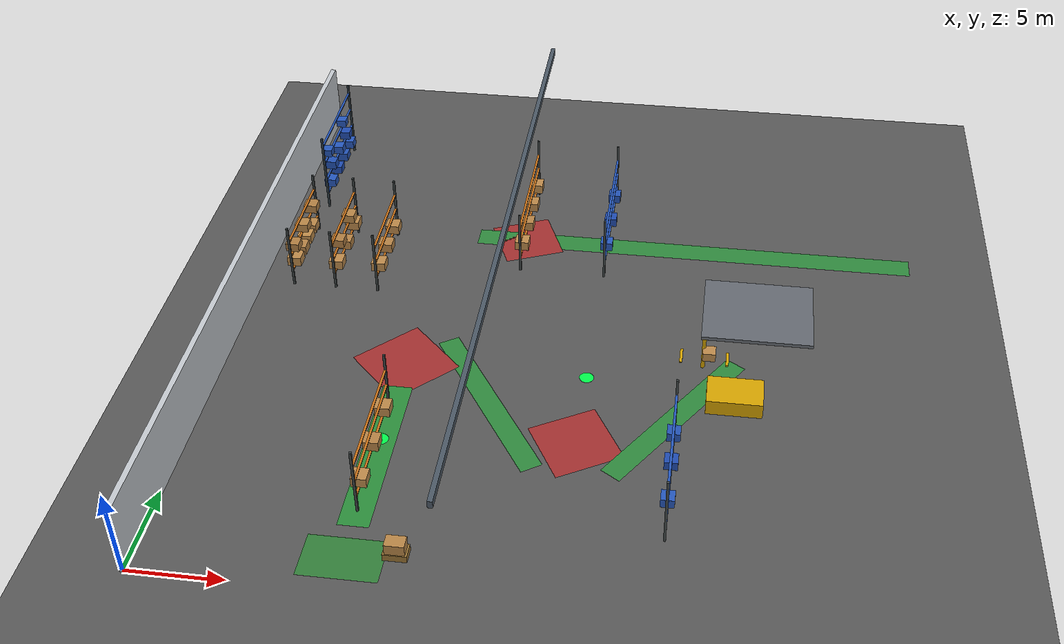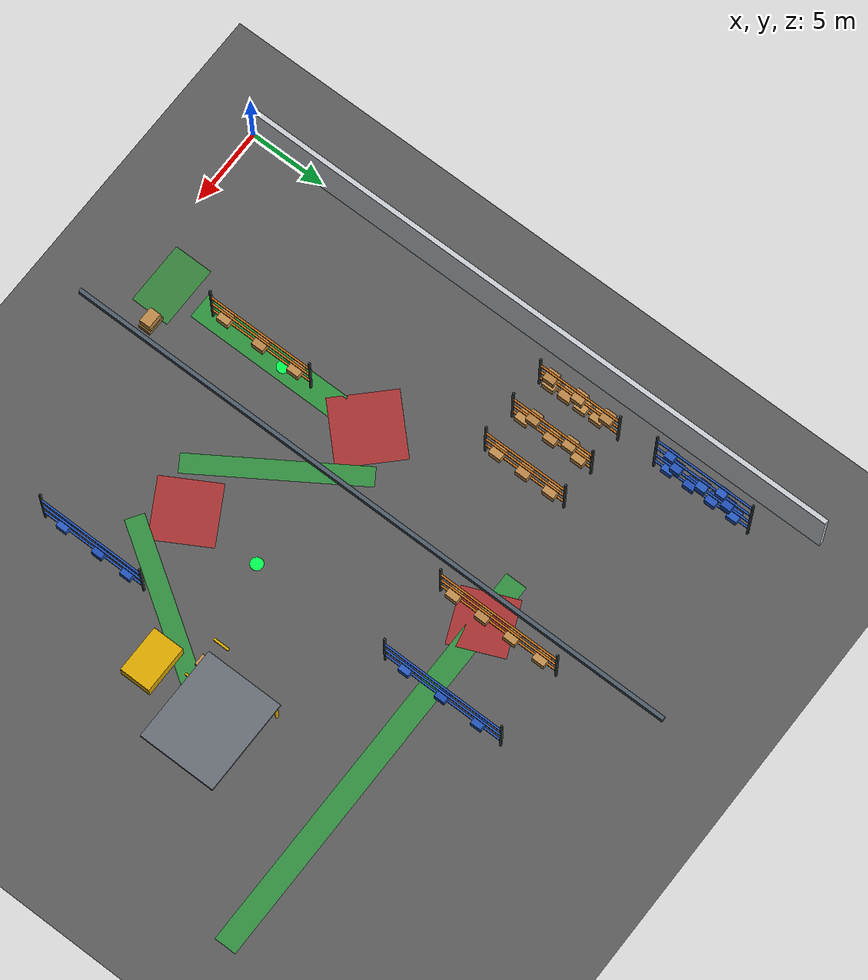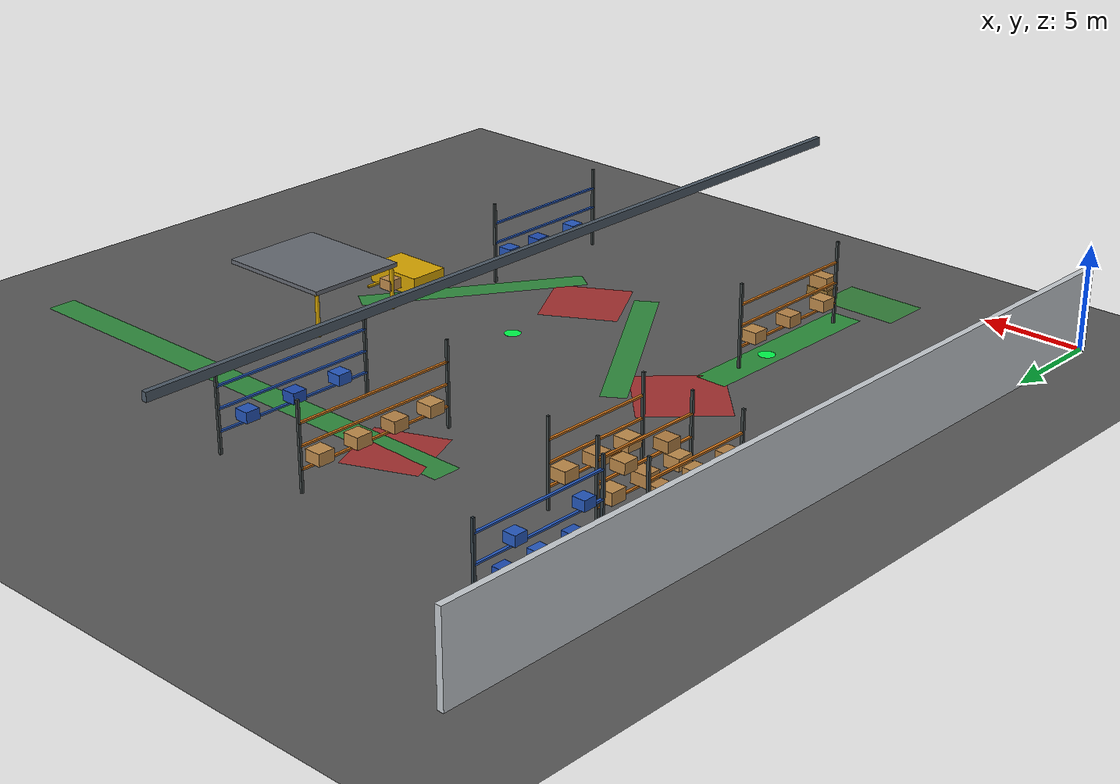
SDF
<sdf version="1.9">
 <world name="warehouse">
  <model name="ground_plane">
   <static>true</static>
   <link name="link">
    <collision name="collision">
     <geometry><plane><normal>0 0 1</normal><size>200 200</size></plane></geometry>
    </collision>
    <visual name="visual">
     <geometry><plane><normal>0 0 1</normal><size>200 200</size></plane></geometry>
     <material><ambient>0.35 0.35 0.35 1</ambient><diffuse>0.35 0.35 0.35 1</diffuse></material>
    </visual>
   </link>
  </model>
  <model name="wall_west">
   <static>true</static>
   <pose>0 20 2.0 0 0 0</pose>
   <link name="link">
    <collision name="c"><geometry><box><size>0.3 40.2 4.0</size></box></geometry></collision>
    <visual name="v">
     <geometry><box><size>0.3 40.2 4.0</size></box></geometry>
     <material><ambient>0.78 0.80 0.82 1</ambient><diffuse>0.78 0.80 0.82 1</diffuse></material>
    </visual>
   </link>
  </model>
  <model name="rack_A1_upright_l">
   <static>true</static>
   <pose>2.0 22.0 2.0 0 0 0</pose>
   <link name="link">
    <collision name="c"><geometry><box><size>0.12 0.12 4.0</size></box></geometry></collision>
    <visual name="v">
     <geometry><box><size>0.12 0.12 4.0</size></box></geometry>
     <material><ambient>0.25 0.28 0.28 1</ambient><diffuse>0.25 0.28 0.28 1</diffuse></material>
    </visual>
   </link>
  </model>
  <model name="rack_A1_upright_r">
   <static>true</static>
   <pose>2.0 27.5 2.0 0 0 0</pose>
   <link name="link">
    <collision name="c"><geometry><box><size>0.12 0.12 4.0</size></box></geometry></collision>
    <visual name="v">
     <geometry><box><size>0.12 0.12 4.0</size></box></geometry>
     <material><ambient>0.25 0.28 0.28 1</ambient><diffuse>0.25 0.28 0.28 1</diffuse></material>
    </visual>
   </link>
  </model>
  <model name="rack_A1_beam1">
   <static>true</static>
   <pose>2.0 24.75 1.0 0 0 0</pose>
   <link name="link">
    <collision name="c"><geometry><box><size>0.12 5.5 0.08</size></box></geometry></collision>
    <visual name="v">
     <geometry><box><size>0.12 5.5 0.08</size></box></geometry>
     <material><ambient>0.8 0.45 0.1 1</ambient><diffuse>0.8 0.45 0.1 1</diffuse></material>
    </visual>
   </link>
  </model>
  <model name="rack_A1_beam2">
   <static>true</static>
   <pose>2.0 24.75 2.0 0 0 0</pose>
   <link name="link">
    <collision name="c"><geometry><box><size>0.12 5.5 0.08</size></box></geometry></collision>
    <visual name="v">
     <geometry><box><size>0.12 5.5 0.08</size></box></geometry>
     <material><ambient>0.8 0.45 0.1 1</ambient><diffuse>0.8 0.45 0.1 1</diffuse></material>
    </visual>
   </link>
  </model>
  <model name="rack_A1_beam3">
   <static>true</static>
   <pose>2.0 24.75 3.0 0 0 0</pose>
   <link name="link">
    <collision name="c"><geometry><box><size>0.12 5.5 0.08</size></box></geometry></collision>
    <visual name="v">
     <geometry><box><size>0.12 5.5 0.08</size></box></geometry>
     <material><ambient>0.8 0.45 0.1 1</ambient><diffuse>0.8 0.45 0.1 1</diffuse></material>
    </visual>
   </link>
  </model>
  <model name="box_A1_t1_1">
   <static>true</static>
   <pose>2.0 22.8 1.3 0 0 0</pose>
   <link name="link">
    <collision name="c"><geometry><box><size>0.8 0.8 0.55</size></box></geometry></collision>
    <visual name="v">
     <geometry><box><size>0.8 0.8 0.55</size></box></geometry>
     <material><ambient>0.75 0.55 0.3 1</ambient><diffuse>0.75 0.55 0.3 1</diffuse></material>
    </visual>
   </link>
  </model>
  <model name="box_A1_t1_2">
   <static>true</static>
   <pose>2.0 23.9 1.3 0 0 0</pose>
   <link name="link">
    <collision name="c"><geometry><box><size>0.8 0.8 0.55</size></box></geometry></collision>
    <visual name="v">
     <geometry><box><size>0.8 0.8 0.55</size></box></geometry>
     <material><ambient>0.72 0.52 0.28 1</ambient><diffuse>0.72 0.52 0.28 1</diffuse></material>
    </visual>
   </link>
  </model>
  <model name="box_A1_t1_3">
   <static>true</static>
   <pose>2.0 25.0 1.3 0 0 0</pose>
   <link name="link">
    <collision name="c"><geometry><box><size>0.8 0.8 0.55</size></box></geometry></collision>
    <visual name="v">
     <geometry><box><size>0.8 0.8 0.55</size></box></geometry>
     <material><ambient>0.76 0.56 0.3 1</ambient><diffuse>0.76 0.56 0.3 1</diffuse></material>
    </visual>
   </link>
  </model>
  <model name="box_A1_t1_4">
   <static>true</static>
   <pose>2.0 26.1 1.3 0 0 0</pose>
   <link name="link">
    <collision name="c"><geometry><box><size>0.8 0.8 0.55</size></box></geometry></collision>
    <visual name="v">
     <geometry><box><size>0.8 0.8 0.55</size></box></geometry>
     <material><ambient>0.74 0.54 0.29 1</ambient><diffuse>0.74 0.54 0.29 1</diffuse></material>
    </visual>
   </link>
  </model>
  <model name="box_A1_t2_1">
   <static>true</static>
   <pose>2.0 22.8 2.3 0 0 0</pose>
   <link name="link">
    <collision name="c"><geometry><box><size>0.75 0.75 0.5</size></box></geometry></collision>
    <visual name="v">
     <geometry><box><size>0.75 0.75 0.5</size></box></geometry>
     <material><ambient>0.70 0.50 0.26 1</ambient><diffuse>0.70 0.50 0.26 1</diffuse></material>
    </visual>
   </link>
  </model>
  <model name="box_A1_t2_2">
   <static>true</static>
   <pose>2.0 24.75 2.3 0 0 0</pose>
   <link name="link">
    <collision name="c"><geometry><box><size>0.75 0.75 0.5</size></box></geometry></collision>
    <visual name="v">
     <geometry><box><size>0.75 0.75 0.5</size></box></geometry>
     <material><ambient>0.73 0.53 0.28 1</ambient><diffuse>0.73 0.53 0.28 1</diffuse></material>
    </visual>
   </link>
  </model>
  <model name="box_A1_t2_3">
   <static>true</static>
   <pose>2.0 26.7 2.3 0 0 0</pose>
   <link name="link">
    <collision name="c"><geometry><box><size>0.75 0.75 0.5</size></box></geometry></collision>
    <visual name="v">
     <geometry><box><size>0.75 0.75 0.5</size></box></geometry>
     <material><ambient>0.71 0.51 0.27 1</ambient><diffuse>0.71 0.51 0.27 1</diffuse></material>
    </visual>
   </link>
  </model>
  <model name="rack_A2_upright_l">
   <static>true</static>
   <pose>4.5 22.0 2.0 0 0 0</pose>
   <link name="link">
    <collision name="c"><geometry><box><size>0.12 0.12 4.0</size></box></geometry></collision>
    <visual name="v">
     <geometry><box><size>0.12 0.12 4.0</size></box></geometry>
     <material><ambient>0.25 0.28 0.28 1</ambient><diffuse>0.25 0.28 0.28 1</diffuse></material>
    </visual>
   </link>
  </model>
  <model name="rack_A2_upright_r">
   <static>true</static>
   <pose>4.5 27.5 2.0 0 0 0</pose>
   <link name="link">
    <collision name="c"><geometry><box><size>0.12 0.12 4.0</size></box></geometry></collision>
    <visual name="v">
     <geometry><box><size>0.12 0.12 4.0</size></box></geometry>
     <material><ambient>0.25 0.28 0.28 1</ambient><diffuse>0.25 0.28 0.28 1</diffuse></material>
    </visual>
   </link>
  </model>
  <model name="rack_A2_beam1">
   <static>true</static>
   <pose>4.5 24.75 1.0 0 0 0</pose>
   <link name="link">
    <collision name="c"><geometry><box><size>0.12 5.5 0.08</size></box></geometry></collision>
    <visual name="v">
     <geometry><box><size>0.12 5.5 0.08</size></box></geometry>
     <material><ambient>0.8 0.45 0.1 1</ambient><diffuse>0.8 0.45 0.1 1</diffuse></material>
    </visual>
   </link>
  </model>
  <model name="rack_A2_beam2">
   <static>true</static>
   <pose>4.5 24.75 2.0 0 0 0</pose>
   <link name="link">
    <collision name="c"><geometry><box><size>0.12 5.5 0.08</size></box></geometry></collision>
    <visual name="v">
     <geometry><box><size>0.12 5.5 0.08</size></box></geometry>
     <material><ambient>0.8 0.45 0.1 1</ambient><diffuse>0.8 0.45 0.1 1</diffuse></material>
    </visual>
   </link>
  </model>
  <model name="rack_A2_beam3">
   <static>true</static>
   <pose>4.5 24.75 3.0 0 0 0</pose>
   <link name="link">
    <collision name="c"><geometry><box><size>0.12 5.5 0.08</size></box></geometry></collision>
    <visual name="v">
     <geometry><box><size>0.12 5.5 0.08</size></box></geometry>
     <material><ambient>0.8 0.45 0.1 1</ambient><diffuse>0.8 0.45 0.1 1</diffuse></material>
    </visual>
   </link>
  </model>
  <model name="box_A2_t1_1">
   <static>true</static>
   <pose>4.5 22.8 1.3 0 0 0</pose>
   <link name="link">
    <collision name="c"><geometry><box><size>0.8 0.8 0.55</size></box></geometry></collision>
    <visual name="v">
     <geometry><box><size>0.8 0.8 0.55</size></box></geometry>
     <material><ambient>0.75 0.55 0.30 1</ambient><diffuse>0.75 0.55 0.30 1</diffuse></material>
    </visual>
   </link>
  </model>
  <model name="box_A2_t1_2">
   <static>true</static>
   <pose>4.5 24.75 1.3 0 0 0</pose>
   <link name="link">
    <collision name="c"><geometry><box><size>0.8 0.8 0.55</size></box></geometry></collision>
    <visual name="v">
     <geometry><box><size>0.8 0.8 0.55</size></box></geometry>
     <material><ambient>0.72 0.52 0.28 1</ambient><diffuse>0.72 0.52 0.28 1</diffuse></material>
    </visual>
   </link>
  </model>
  <model name="box_A2_t1_3">
   <static>true</static>
   <pose>4.5 26.7 1.3 0 0 0</pose>
   <link name="link">
    <collision name="c"><geometry><box><size>0.8 0.8 0.55</size></box></geometry></collision>
    <visual name="v">
     <geometry><box><size>0.8 0.8 0.55</size></box></geometry>
     <material><ambient>0.74 0.54 0.29 1</ambient><diffuse>0.74 0.54 0.29 1</diffuse></material>
    </visual>
   </link>
  </model>
  <model name="box_A2_t2_1">
   <static>true</static>
   <pose>4.5 23.5 2.3 0 0 0</pose>
   <link name="link">
    <collision name="c"><geometry><box><size>0.75 0.75 0.5</size></box></geometry></collision>
    <visual name="v">
     <geometry><box><size>0.75 0.75 0.5</size></box></geometry>
     <material><ambient>0.70 0.50 0.26 1</ambient><diffuse>0.70 0.50 0.26 1</diffuse></material>
    </visual>
   </link>
  </model>
  <model name="box_A2_t2_2">
   <static>true</static>
   <pose>4.5 26.0 2.3 0 0 0</pose>
   <link name="link">
    <collision name="c"><geometry><box><size>0.75 0.75 0.5</size></box></geometry></collision>
    <visual name="v">
     <geometry><box><size>0.75 0.75 0.5</size></box></geometry>
     <material><ambient>0.73 0.53 0.28 1</ambient><diffuse>0.73 0.53 0.28 1</diffuse></material>
    </visual>
   </link>
  </model>
  <model name="rack_A3_upright_l">
   <static>true</static>
   <pose>7.0 22.0 2.0 0 0 0</pose>
   <link name="link">
    <collision name="c"><geometry><box><size>0.12 0.12 4.0</size></box></geometry></collision>
    <visual name="v">
     <geometry><box><size>0.12 0.12 4.0</size></box></geometry>
     <material><ambient>0.25 0.28 0.28 1</ambient><diffuse>0.25 0.28 0.28 1</diffuse></material>
    </visual>
   </link>
  </model>
  <model name="rack_A3_upright_r">
   <static>true</static>
   <pose>7.0 27.5 2.0 0 0 0</pose>
   <link name="link">
    <collision name="c"><geometry><box><size>0.12 0.12 4.0</size></box></geometry></collision>
    <visual name="v">
     <geometry><box><size>0.12 0.12 4.0</size></box></geometry>
     <material><ambient>0.25 0.28 0.28 1</ambient><diffuse>0.25 0.28 0.28 1</diffuse></material>
    </visual>
   </link>
  </model>
  <model name="rack_A3_beam1">
   <static>true</static>
   <pose>7.0 24.75 1.0 0 0 0</pose>
   <link name="link">
    <collision name="c"><geometry><box><size>0.12 5.5 0.08</size></box></geometry></collision>
    <visual name="v">
     <geometry><box><size>0.12 5.5 0.08</size></box></geometry>
     <material><ambient>0.8 0.45 0.1 1</ambient><diffuse>0.8 0.45 0.1 1</diffuse></material>
    </visual>
   </link>
  </model>
  <model name="rack_A3_beam2">
   <static>true</static>
   <pose>7.0 24.75 2.0 0 0 0</pose>
   <link name="link">
    <collision name="c"><geometry><box><size>0.12 5.5 0.08</size></box></geometry></collision>
    <visual name="v">
     <geometry><box><size>0.12 5.5 0.08</size></box></geometry>
     <material><ambient>0.8 0.45 0.1 1</ambient><diffuse>0.8 0.45 0.1 1</diffuse></material>
    </visual>
   </link>
  </model>
  <model name="rack_A3_beam3">
   <static>true</static>
   <pose>7.0 24.75 3.0 0 0 0</pose>
   <link name="link">
    <collision name="c"><geometry><box><size>0.12 5.5 0.08</size></box></geometry></collision>
    <visual name="v">
     <geometry><box><size>0.12 5.5 0.08</size></box></geometry>
     <material><ambient>0.8 0.45 0.1 1</ambient><diffuse>0.8 0.45 0.1 1</diffuse></material>
    </visual>
   </link>
  </model>
  <model name="box_A3_t1_1">
   <static>true</static>
   <pose>7.0 22.9 1.3 0 0 0</pose>
   <link name="link">
    <collision name="c"><geometry><box><size>0.8 0.8 0.55</size></box></geometry></collision>
    <visual name="v">
     <geometry><box><size>0.8 0.8 0.55</size></box></geometry>
     <material><ambient>0.75 0.55 0.3 1</ambient><diffuse>0.75 0.55 0.3 1</diffuse></material>
    </visual>
   </link>
  </model>
  <model name="box_A3_t1_2">
   <static>true</static>
   <pose>7.0 24.75 1.3 0 0 0</pose>
   <link name="link">
    <collision name="c"><geometry><box><size>0.8 0.8 0.55</size></box></geometry></collision>
    <visual name="v">
     <geometry><box><size>0.8 0.8 0.55</size></box></geometry>
     <material><ambient>0.72 0.52 0.28 1</ambient><diffuse>0.72 0.52 0.28 1</diffuse></material>
    </visual>
   </link>
  </model>
  <model name="box_A3_t1_3">
   <static>true</static>
   <pose>7.0 26.6 1.3 0 0 0</pose>
   <link name="link">
    <collision name="c"><geometry><box><size>0.8 0.8 0.55</size></box></geometry></collision>
    <visual name="v">
     <geometry><box><size>0.8 0.8 0.55</size></box></geometry>
     <material><ambient>0.74 0.54 0.29 1</ambient><diffuse>0.74 0.54 0.29 1</diffuse></material>
    </visual>
   </link>
  </model>
  <model name="rack_Ab1_upright_l">
   <static>true</static>
   <pose>2.0 30.0 2.5 0 0 0</pose>
   <link name="link">
    <collision name="c"><geometry><box><size>0.12 0.12 5.0</size></box></geometry></collision>
    <visual name="v">
     <geometry><box><size>0.12 0.12 5.0</size></box></geometry>
     <material><ambient>0.2 0.25 0.28 1</ambient><diffuse>0.2 0.25 0.28 1</diffuse></material>
    </visual>
   </link>
  </model>
  <model name="rack_Ab1_upright_r">
   <static>true</static>
   <pose>2.0 36.5 2.5 0 0 0</pose>
   <link name="link">
    <collision name="c"><geometry><box><size>0.12 0.12 5.0</size></box></geometry></collision>
    <visual name="v">
     <geometry><box><size>0.12 0.12 5.0</size></box></geometry>
     <material><ambient>0.2 0.25 0.28 1</ambient><diffuse>0.2 0.25 0.28 1</diffuse></material>
    </visual>
   </link>
  </model>
  <model name="rack_Ab1_beam1">
   <static>true</static>
   <pose>2.0 33.25 1.0 0 0 0</pose>
   <link name="link">
    <collision name="c"><geometry><box><size>0.12 6.5 0.08</size></box></geometry></collision>
    <visual name="v">
     <geometry><box><size>0.12 6.5 0.08</size></box></geometry>
     <material><ambient>0.15 0.35 0.75 1</ambient><diffuse>0.15 0.35 0.75 1</diffuse></material>
    </visual>
   </link>
  </model>
  <model name="rack_Ab1_beam2">
   <static>true</static>
   <pose>2.0 33.25 2.0 0 0 0</pose>
   <link name="link">
    <collision name="c"><geometry><box><size>0.12 6.5 0.08</size></box></geometry></collision>
    <visual name="v">
     <geometry><box><size>0.12 6.5 0.08</size></box></geometry>
     <material><ambient>0.15 0.35 0.75 1</ambient><diffuse>0.15 0.35 0.75 1</diffuse></material>
    </visual>
   </link>
  </model>
  <model name="rack_Ab1_beam3">
   <static>true</static>
   <pose>2.0 33.25 3.2 0 0 0</pose>
   <link name="link">
    <collision name="c"><geometry><box><size>0.12 6.5 0.08</size></box></geometry></collision>
    <visual name="v">
     <geometry><box><size>0.12 6.5 0.08</size></box></geometry>
     <material><ambient>0.15 0.35 0.75 1</ambient><diffuse>0.15 0.35 0.75 1</diffuse></material>
    </visual>
   </link>
  </model>
  <model name="rack_Ab1_beam4">
   <static>true</static>
   <pose>2.0 33.25 4.4 0 0 0</pose>
   <link name="link">
    <collision name="c"><geometry><box><size>0.12 6.5 0.08</size></box></geometry></collision>
    <visual name="v">
     <geometry><box><size>0.12 6.5 0.08</size></box></geometry>
     <material><ambient>0.15 0.35 0.75 1</ambient><diffuse>0.15 0.35 0.75 1</diffuse></material>
    </visual>
   </link>
  </model>
  <model name="box_Ab1_t1_1">
   <static>true</static>
   <pose>2.0 31.0 1.3 0 0 0</pose>
   <link name="link">
    <collision name="c"><geometry><box><size>0.7 0.7 0.5</size></box></geometry></collision>
    <visual name="v">
     <geometry><box><size>0.7 0.7 0.5</size></box></geometry>
     <material><ambient>0.15 0.35 0.75 1</ambient><diffuse>0.15 0.35 0.75 1</diffuse></material>
    </visual>
   </link>
  </model>
  <model name="box_Ab1_t1_2">
   <static>true</static>
   <pose>2.0 32.5 1.3 0 0 0</pose>
   <link name="link">
    <collision name="c"><geometry><box><size>0.7 0.7 0.5</size></box></geometry></collision>
    <visual name="v">
     <geometry><box><size>0.7 0.7 0.5</size></box></geometry>
     <material><ambient>0.12 0.30 0.70 1</ambient><diffuse>0.12 0.30 0.70 1</diffuse></material>
    </visual>
   </link>
  </model>
  <model name="box_Ab1_t1_3">
   <static>true</static>
   <pose>2.0 34.0 1.3 0 0 0</pose>
   <link name="link">
    <collision name="c"><geometry><box><size>0.7 0.7 0.5</size></box></geometry></collision>
    <visual name="v">
     <geometry><box><size>0.7 0.7 0.5</size></box></geometry>
     <material><ambient>0.14 0.33 0.72 1</ambient><diffuse>0.14 0.33 0.72 1</diffuse></material>
    </visual>
   </link>
  </model>
  <model name="box_Ab1_t1_4">
   <static>true</static>
   <pose>2.0 35.5 1.3 0 0 0</pose>
   <link name="link">
    <collision name="c"><geometry><box><size>0.7 0.7 0.5</size></box></geometry></collision>
    <visual name="v">
     <geometry><box><size>0.7 0.7 0.5</size></box></geometry>
     <material><ambient>0.15 0.35 0.75 1</ambient><diffuse>0.15 0.35 0.75 1</diffuse></material>
    </visual>
   </link>
  </model>
  <model name="box_Ab1_t2_1">
   <static>true</static>
   <pose>2.0 31.5 2.3 0 0 0</pose>
   <link name="link">
    <collision name="c"><geometry><box><size>0.65 0.65 0.5</size></box></geometry></collision>
    <visual name="v">
     <geometry><box><size>0.65 0.65 0.5</size></box></geometry>
     <material><ambient>0.13 0.32 0.71 1</ambient><diffuse>0.13 0.32 0.71 1</diffuse></material>
    </visual>
   </link>
  </model>
  <model name="box_Ab1_t2_2">
   <static>true</static>
   <pose>2.0 33.25 2.3 0 0 0</pose>
   <link name="link">
    <collision name="c"><geometry><box><size>0.65 0.65 0.5</size></box></geometry></collision>
    <visual name="v">
     <geometry><box><size>0.65 0.65 0.5</size></box></geometry>
     <material><ambient>0.15 0.35 0.75 1</ambient><diffuse>0.15 0.35 0.75 1</diffuse></material>
    </visual>
   </link>
  </model>
  <model name="box_Ab1_t2_3">
   <static>true</static>
   <pose>2.0 35.0 2.3 0 0 0</pose>
   <link name="link">
    <collision name="c"><geometry><box><size>0.65 0.65 0.5</size></box></geometry></collision>
    <visual name="v">
     <geometry><box><size>0.65 0.65 0.5</size></box></geometry>
     <material><ambient>0.12 0.30 0.70 1</ambient><diffuse>0.12 0.30 0.70 1</diffuse></material>
    </visual>
   </link>
  </model>
  <model name="box_Ab1_t3_1">
   <static>true</static>
   <pose>2.0 31.0 3.5 0 0 0</pose>
   <link name="link">
    <collision name="c"><geometry><box><size>0.6 0.6 0.45</size></box></geometry></collision>
    <visual name="v">
     <geometry><box><size>0.6 0.6 0.45</size></box></geometry>
     <material><ambient>0.14 0.34 0.73 1</ambient><diffuse>0.14 0.34 0.73 1</diffuse></material>
    </visual>
   </link>
  </model>
  <model name="box_Ab1_t3_2">
   <static>true</static>
   <pose>2.0 34.5 3.5 0 0 0</pose>
   <link name="link">
    <collision name="c"><geometry><box><size>0.6 0.6 0.45</size></box></geometry></collision>
    <visual name="v">
     <geometry><box><size>0.6 0.6 0.45</size></box></geometry>
     <material><ambient>0.15 0.35 0.75 1</ambient><diffuse>0.15 0.35 0.75 1</diffuse></material>
    </visual>
   </link>
  </model>
  <model name="rack_C1_upright_l">
   <static>true</static>
   <pose>15.0 25.0 2.0 0 0 0</pose>
   <link name="link">
    <collision name="c"><geometry><box><size>0.12 0.12 4.0</size></box></geometry></collision>
    <visual name="v">
     <geometry><box><size>0.12 0.12 4.0</size></box></geometry>
     <material><ambient>0.25 0.28 0.28 1</ambient><diffuse>0.25 0.28 0.28 1</diffuse></material>
    </visual>
   </link>
  </model>
  <model name="rack_C1_upright_r">
   <static>true</static>
   <pose>15.0 33.0 2.0 0 0 0</pose>
   <link name="link">
    <collision name="c"><geometry><box><size>0.12 0.12 4.0</size></box></geometry></collision>
    <visual name="v">
     <geometry><box><size>0.12 0.12 4.0</size></box></geometry>
     <material><ambient>0.25 0.28 0.28 1</ambient><diffuse>0.25 0.28 0.28 1</diffuse></material>
    </visual>
   </link>
  </model>
  <model name="rack_C1_beam1">
   <static>true</static>
   <pose>15.0 29.0 1.0 0 0 0</pose>
   <link name="link">
    <collision name="c"><geometry><box><size>0.12 8.0 0.08</size></box></geometry></collision>
    <visual name="v">
     <geometry><box><size>0.12 8.0 0.08</size></box></geometry>
     <material><ambient>0.8 0.45 0.1 1</ambient><diffuse>0.8 0.45 0.1 1</diffuse></material>
    </visual>
   </link>
  </model>
  <model name="rack_C1_beam2">
   <static>true</static>
   <pose>15.0 29.0 2.0 0 0 0</pose>
   <link name="link">
    <collision name="c"><geometry><box><size>0.12 8.0 0.08</size></box></geometry></collision>
    <visual name="v">
     <geometry><box><size>0.12 8.0 0.08</size></box></geometry>
     <material><ambient>0.8 0.45 0.1 1</ambient><diffuse>0.8 0.45 0.1 1</diffuse></material>
    </visual>
   </link>
  </model>
  <model name="rack_C1_beam3">
   <static>true</static>
   <pose>15.0 29.0 3.0 0 0 0</pose>
   <link name="link">
    <collision name="c"><geometry><box><size>0.12 8.0 0.08</size></box></geometry></collision>
    <visual name="v">
     <geometry><box><size>0.12 8.0 0.08</size></box></geometry>
     <material><ambient>0.8 0.45 0.1 1</ambient><diffuse>0.8 0.45 0.1 1</diffuse></material>
    </visual>
   </link>
  </model>
  <model name="box_C1_t1_1">
   <static>true</static>
   <pose>15.0 26.0 1.3 0 0 0</pose>
   <link name="link">
    <collision name="c"><geometry><box><size>0.8 0.8 0.55</size></box></geometry></collision>
    <visual name="v">
     <geometry><box><size>0.8 0.8 0.55</size></box></geometry>
     <material><ambient>0.75 0.55 0.30 1</ambient><diffuse>0.75 0.55 0.30 1</diffuse></material>
    </visual>
   </link>
  </model>
  <model name="box_C1_t1_2">
   <static>true</static>
   <pose>15.0 28.0 1.3 0 0 0</pose>
   <link name="link">
    <collision name="c"><geometry><box><size>0.8 0.8 0.55</size></box></geometry></collision>
    <visual name="v">
     <geometry><box><size>0.8 0.8 0.55</size></box></geometry>
     <material><ambient>0.72 0.52 0.28 1</ambient><diffuse>0.72 0.52 0.28 1</diffuse></material>
    </visual>
   </link>
  </model>
  <model name="box_C1_t1_3">
   <static>true</static>
   <pose>15.0 30.0 1.3 0 0 0</pose>
   <link name="link">
    <collision name="c"><geometry><box><size>0.8 0.8 0.55</size></box></geometry></collision>
    <visual name="v">
     <geometry><box><size>0.8 0.8 0.55</size></box></geometry>
     <material><ambient>0.74 0.54 0.29 1</ambient><diffuse>0.74 0.54 0.29 1</diffuse></material>
    </visual>
   </link>
  </model>
  <model name="box_C1_t1_4">
   <static>true</static>
   <pose>15.0 32.0 1.3 0 0 0</pose>
   <link name="link">
    <collision name="c"><geometry><box><size>0.8 0.8 0.55</size></box></geometry></collision>
    <visual name="v">
     <geometry><box><size>0.8 0.8 0.55</size></box></geometry>
     <material><ambient>0.75 0.55 0.3 1</ambient><diffuse>0.75 0.55 0.3 1</diffuse></material>
    </visual>
   </link>
  </model>
  <model name="rack_C2_upright_l">
   <static>true</static>
   <pose>20.0 25.0 2.0 0 0 0</pose>
   <link name="link">
    <collision name="c"><geometry><box><size>0.12 0.12 4.0</size></box></geometry></collision>
    <visual name="v">
     <geometry><box><size>0.12 0.12 4.0</size></box></geometry>
     <material><ambient>0.25 0.28 0.28 1</ambient><diffuse>0.25 0.28 0.28 1</diffuse></material>
    </visual>
   </link>
  </model>
  <model name="rack_C2_upright_r">
   <static>true</static>
   <pose>20.0 33.0 2.0 0 0 0</pose>
   <link name="link">
    <collision name="c"><geometry><box><size>0.12 0.12 4.0</size></box></geometry></collision>
    <visual name="v">
     <geometry><box><size>0.12 0.12 4.0</size></box></geometry>
     <material><ambient>0.25 0.28 0.28 1</ambient><diffuse>0.25 0.28 0.28 1</diffuse></material>
    </visual>
   </link>
  </model>
  <model name="rack_C2_beam1">
   <static>true</static>
   <pose>20.0 29.0 1.0 0 0 0</pose>
   <link name="link">
    <collision name="c"><geometry><box><size>0.12 8.0 0.08</size></box></geometry></collision>
    <visual name="v">
     <geometry><box><size>0.12 8.0 0.08</size></box></geometry>
     <material><ambient>0.15 0.35 0.75 1</ambient><diffuse>0.15 0.35 0.75 1</diffuse></material>
    </visual>
   </link>
  </model>
  <model name="rack_C2_beam2">
   <static>true</static>
   <pose>20.0 29.0 2.0 0 0 0</pose>
   <link name="link">
    <collision name="c"><geometry><box><size>0.12 8.0 0.08</size></box></geometry></collision>
    <visual name="v">
     <geometry><box><size>0.12 8.0 0.08</size></box></geometry>
     <material><ambient>0.15 0.35 0.75 1</ambient><diffuse>0.15 0.35 0.75 1</diffuse></material>
    </visual>
   </link>
  </model>
  <model name="rack_C2_beam3">
   <static>true</static>
   <pose>20.0 29.0 3.0 0 0 0</pose>
   <link name="link">
    <collision name="c"><geometry><box><size>0.12 8.0 0.08</size></box></geometry></collision>
    <visual name="v">
     <geometry><box><size>0.12 8.0 0.08</size></box></geometry>
     <material><ambient>0.15 0.35 0.75 1</ambient><diffuse>0.15 0.35 0.75 1</diffuse></material>
    </visual>
   </link>
  </model>
  <model name="box_C2_t1_1">
   <static>true</static>
   <pose>20.0 26.5 1.3 0 0 0</pose>
   <link name="link">
    <collision name="c"><geometry><box><size>0.7 0.7 0.5</size></box></geometry></collision>
    <visual name="v">
     <geometry><box><size>0.7 0.7 0.5</size></box></geometry>
     <material><ambient>0.15 0.35 0.75 1</ambient><diffuse>0.15 0.35 0.75 1</diffuse></material>
    </visual>
   </link>
  </model>
  <model name="box_C2_t1_2">
   <static>true</static>
   <pose>20.0 29.0 1.3 0 0 0</pose>
   <link name="link">
    <collision name="c"><geometry><box><size>0.7 0.7 0.5</size></box></geometry></collision>
    <visual name="v">
     <geometry><box><size>0.7 0.7 0.5</size></box></geometry>
     <material><ambient>0.12 0.30 0.70 1</ambient><diffuse>0.12 0.30 0.70 1</diffuse></material>
    </visual>
   </link>
  </model>
  <model name="box_C2_t1_3">
   <static>true</static>
   <pose>20.0 31.5 1.3 0 0 0</pose>
   <link name="link">
    <collision name="c"><geometry><box><size>0.7 0.7 0.5</size></box></geometry></collision>
    <visual name="v">
     <geometry><box><size>0.7 0.7 0.5</size></box></geometry>
     <material><ambient>0.14 0.33 0.72 1</ambient><diffuse>0.14 0.33 0.72 1</diffuse></material>
    </visual>
   </link>
  </model>
  <model name="rack_D1_upright_l">
   <static>true</static>
   <pose>10.0 5.0 2.0 0 0 0</pose>
   <link name="link">
    <collision name="c"><geometry><box><size>0.12 0.12 4.0</size></box></geometry></collision>
    <visual name="v">
     <geometry><box><size>0.12 0.12 4.0</size></box></geometry>
     <material><ambient>0.25 0.28 0.28 1</ambient><diffuse>0.25 0.28 0.28 1</diffuse></material>
    </visual>
   </link>
  </model>
  <model name="rack_D1_upright_r">
   <static>true</static>
   <pose>10.0 12.0 2.0 0 0 0</pose>
   <link name="link">
    <collision name="c"><geometry><box><size>0.12 0.12 4.0</size></box></geometry></collision>
    <visual name="v">
     <geometry><box><size>0.12 0.12 4.0</size></box></geometry>
     <material><ambient>0.25 0.28 0.28 1</ambient><diffuse>0.25 0.28 0.28 1</diffuse></material>
    </visual>
   </link>
  </model>
  <model name="rack_D1_beam1">
   <static>true</static>
   <pose>10.0 8.5 1.0 0 0 0</pose>
   <link name="link">
    <collision name="c"><geometry><box><size>0.12 7.0 0.08</size></box></geometry></collision>
    <visual name="v">
     <geometry><box><size>0.12 7.0 0.08</size></box></geometry>
     <material><ambient>0.8 0.45 0.1 1</ambient><diffuse>0.8 0.45 0.1 1</diffuse></material>
    </visual>
   </link>
  </model>
  <model name="rack_D1_beam2">
   <static>true</static>
   <pose>10.0 8.5 2.0 0 0 0</pose>
   <link name="link">
    <collision name="c"><geometry><box><size>0.12 7.0 0.08</size></box></geometry></collision>
    <visual name="v">
     <geometry><box><size>0.12 7.0 0.08</size></box></geometry>
     <material><ambient>0.8 0.45 0.1 1</ambient><diffuse>0.8 0.45 0.1 1</diffuse></material>
    </visual>
   </link>
  </model>
  <model name="rack_D1_beam3">
   <static>true</static>
   <pose>10.0 8.5 3.0 0 0 0</pose>
   <link name="link">
    <collision name="c"><geometry><box><size>0.12 7.0 0.08</size></box></geometry></collision>
    <visual name="v">
     <geometry><box><size>0.12 7.0 0.08</size></box></geometry>
     <material><ambient>0.8 0.45 0.1 1</ambient><diffuse>0.8 0.45 0.1 1</diffuse></material>
    </visual>
   </link>
  </model>
  <model name="box_D1_t1_1">
   <static>true</static>
   <pose>10.0 6.0 1.3 0 0 0</pose>
   <link name="link">
    <collision name="c"><geometry><box><size>0.8 0.8 0.55</size></box></geometry></collision>
    <visual name="v">
     <geometry><box><size>0.8 0.8 0.55</size></box></geometry>
     <material><ambient>0.75 0.55 0.30 1</ambient><diffuse>0.75 0.55 0.30 1</diffuse></material>
    </visual>
   </link>
  </model>
  <model name="box_D1_t1_2">
   <static>true</static>
   <pose>10.0 8.5 1.3 0 0 0</pose>
   <link name="link">
    <collision name="c"><geometry><box><size>0.8 0.8 0.55</size></box></geometry></collision>
    <visual name="v">
     <geometry><box><size>0.8 0.8 0.55</size></box></geometry>
     <material><ambient>0.72 0.52 0.28 1</ambient><diffuse>0.72 0.52 0.28 1</diffuse></material>
    </visual>
   </link>
  </model>
  <model name="box_D1_t1_3">
   <static>true</static>
   <pose>10.0 11.0 1.3 0 0 0</pose>
   <link name="link">
    <collision name="c"><geometry><box><size>0.8 0.8 0.55</size></box></geometry></collision>
    <visual name="v">
     <geometry><box><size>0.8 0.8 0.55</size></box></geometry>
     <material><ambient>0.74 0.54 0.29 1</ambient><diffuse>0.74 0.54 0.29 1</diffuse></material>
    </visual>
   </link>
  </model>
  <model name="rack_D2_upright_l">
   <static>true</static>
   <pose>25.0 5.0 2.0 0 0 0</pose>
   <link name="link">
    <collision name="c"><geometry><box><size>0.12 0.12 4.0</size></box></geometry></collision>
    <visual name="v">
     <geometry><box><size>0.12 0.12 4.0</size></box></geometry>
     <material><ambient>0.25 0.28 0.28 1</ambient><diffuse>0.25 0.28 0.28 1</diffuse></material>
    </visual>
   </link>
  </model>
  <model name="rack_D2_upright_r">
   <static>true</static>
   <pose>25.0 12.0 2.0 0 0 0</pose>
   <link name="link">
    <collision name="c"><geometry><box><size>0.12 0.12 4.0</size></box></geometry></collision>
    <visual name="v">
     <geometry><box><size>0.12 0.12 4.0</size></box></geometry>
     <material><ambient>0.25 0.28 0.28 1</ambient><diffuse>0.25 0.28 0.28 1</diffuse></material>
    </visual>
   </link>
  </model>
  <model name="rack_D2_beam1">
   <static>true</static>
   <pose>25.0 8.5 1.0 0 0 0</pose>
   <link name="link">
    <collision name="c"><geometry><box><size>0.12 7.0 0.08</size></box></geometry></collision>
    <visual name="v">
     <geometry><box><size>0.12 7.0 0.08</size></box></geometry>
     <material><ambient>0.15 0.35 0.75 1</ambient><diffuse>0.15 0.35 0.75 1</diffuse></material>
    </visual>
   </link>
  </model>
  <model name="rack_D2_beam2">
   <static>true</static>
   <pose>25.0 8.5 2.0 0 0 0</pose>
   <link name="link">
    <collision name="c"><geometry><box><size>0.12 7.0 0.08</size></box></geometry></collision>
    <visual name="v">
     <geometry><box><size>0.12 7.0 0.08</size></box></geometry>
     <material><ambient>0.15 0.35 0.75 1</ambient><diffuse>0.15 0.35 0.75 1</diffuse></material>
    </visual>
   </link>
  </model>
  <model name="rack_D2_beam3">
   <static>true</static>
   <pose>25.0 8.5 3.0 0 0 0</pose>
   <link name="link">
    <collision name="c"><geometry><box><size>0.12 7.0 0.08</size></box></geometry></collision>
    <visual name="v">
     <geometry><box><size>0.12 7.0 0.08</size></box></geometry>
     <material><ambient>0.15 0.35 0.75 1</ambient><diffuse>0.15 0.35 0.75 1</diffuse></material>
    </visual>
   </link>
  </model>
  <model name="box_D2_t1_1">
   <static>true</static>
   <pose>25.0 6.5 1.3 0 0 0</pose>
   <link name="link">
    <collision name="c"><geometry><box><size>0.7 0.7 0.5</size></box></geometry></collision>
    <visual name="v">
     <geometry><box><size>0.7 0.7 0.5</size></box></geometry>
     <material><ambient>0.15 0.35 0.75 1</ambient><diffuse>0.15 0.35 0.75 1</diffuse></material>
    </visual>
   </link>
  </model>
  <model name="box_D2_t1_2">
   <static>true</static>
   <pose>25.0 9.0 1.3 0 0 0</pose>
   <link name="link">
    <collision name="c"><geometry><box><size>0.7 0.7 0.5</size></box></geometry></collision>
    <visual name="v">
     <geometry><box><size>0.7 0.7 0.5</size></box></geometry>
     <material><ambient>0.12 0.30 0.70 1</ambient><diffuse>0.12 0.30 0.70 1</diffuse></material>
    </visual>
   </link>
  </model>
  <model name="box_D2_t1_3">
   <static>true</static>
   <pose>25.0 11.0 1.3 0 0 0</pose>
   <link name="link">
    <collision name="c"><geometry><box><size>0.7 0.7 0.5</size></box></geometry></collision>
    <visual name="v">
     <geometry><box><size>0.7 0.7 0.5</size></box></geometry>
     <material><ambient>0.14 0.33 0.72 1</ambient><diffuse>0.14 0.33 0.72 1</diffuse></material>
    </visual>
   </link>
  </model>
  <model name="conveyor_roller_1">
   <static>true</static>
   <pose>25.0 17.5 0.83 0 0 0</pose>
   <link name="link">
    <collision name="c"><geometry><box><size>0.15 1.05 0.08</size></box></geometry></collision>
    <visual name="v">
     <geometry><box><size>0.15 1.05 0.08</size></box></geometry>
     <material><ambient>0.85 0.65 0.0 1</ambient><diffuse>0.85 0.65 0.0 1</diffuse></material>
    </visual>
   </link>
  </model>
  <model name="conveyor_roller_2">
   <static>true</static>
   <pose>27.5 17.5 0.83 0 0 0</pose>
   <link name="link">
    <collision name="c"><geometry><box><size>0.15 1.05 0.08</size></box></geometry></collision>
    <visual name="v">
     <geometry><box><size>0.15 1.05 0.08</size></box></geometry>
     <material><ambient>0.85 0.65 0.0 1</ambient><diffuse>0.85 0.65 0.0 1</diffuse></material>
    </visual>
   </link>
  </model>
  <model name="box_conv_1">
   <static>true</static>
   <pose>26.5 17.5 1.15 0 0 0</pose>
   <link name="link">
    <collision name="c"><geometry><box><size>0.7 0.7 0.5</size></box></geometry></collision>
    <visual name="v">
     <geometry><box><size>0.7 0.7 0.5</size></box></geometry>
     <material><ambient>0.75 0.55 0.3 1</ambient><diffuse>0.75 0.55 0.3 1</diffuse></material>
    </visual>
   </link>
  </model>
  <model name="workstation_1">
   <static>true</static>
   <pose>28.0 15.0 0.45 0 0 0</pose>
   <link name="link">
    <collision name="c"><geometry><box><size>3.0 2.0 0.9</size></box></geometry></collision>
    <visual name="v">
     <geometry><box><size>3.0 2.0 0.9</size></box></geometry>
     <material><ambient>0.85 0.65 0.0 1</ambient><diffuse>0.85 0.65 0.0 1</diffuse></material>
    </visual>
   </link>
  </model>
  <model name="staging_zone_1">
   <static>true</static>
   <pose>10.0 2.0 0.003 0 0 0</pose>
   <link name="link">
    <collision name="c"><geometry><box><size>4.0 2.5 0.001</size></box></geometry></collision>
    <visual name="v">
     <geometry><box><size>4.0 2.5 0.001</size></box></geometry>
     <material><ambient>0.1 0.7 0.15 0.5</ambient><diffuse>0.1 0.7 0.15 0.5</diffuse></material>
    </visual>
   </link>
  </model>
  <model name="pallet_stack_1">
   <static>true</static>
   <pose>12.5 2.5 0.2 0 0 0</pose>
   <link name="link">
    <collision name="c"><geometry><box><size>1.2 0.8 0.4</size></box></geometry></collision>
    <visual name="v">
     <geometry><box><size>1.2 0.8 0.4</size></box></geometry>
     <material><ambient>0.6 0.45 0.2 1</ambient><diffuse>0.6 0.45 0.2 1</diffuse></material>
    </visual>
   </link>
  </model>
  <model name="pallet_boxes_1">
   <static>true</static>
   <pose>12.5 2.5 0.7 0 0 0</pose>
   <link name="link">
    <collision name="c"><geometry><box><size>1.0 0.7 0.6</size></box></geometry></collision>
    <visual name="v">
     <geometry><box><size>1.0 0.7 0.6</size></box></geometry>
     <material><ambient>0.73 0.53 0.28 1</ambient><diffuse>0.73 0.53 0.28 1</diffuse></material>
    </visual>
   </link>
  </model>
  <model name="mezzanine_deck">
   <static>true</static>
   <pose>29.0 20.0 2.2 0 0 0</pose>
   <link name="link">
    <collision name="c"><geometry><box><size>6.0 5.0 0.2</size></box></geometry></collision>
    <visual name="v">
     <geometry><box><size>6.0 5.0 0.2</size></box></geometry>
     <material><ambient>0.4 0.42 0.45 1</ambient><diffuse>0.4 0.42 0.45 1</diffuse></material>
    </visual>
   </link>
  </model>
  <model name="mezz_col_1">
   <static>true</static>
   <pose>26.2 17.7 1.1 0 0 0</pose>
   <link name="link">
    <collision name="c">
     <geometry><cylinder><radius>0.1</radius><length>2.2</length></cylinder></geometry>
    </collision>
    <visual name="v">
     <geometry><cylinder><radius>0.1</radius><length>2.2</length></cylinder></geometry>
     <material><ambient>0.85 0.65 0.0 1</ambient><diffuse>0.85 0.65 0.0 1</diffuse></material>
    </visual>
   </link>
  </model>
  <model name="mezz_col_3">
   <static>true</static>
   <pose>26.2 22.3 1.1 0 0 0</pose>
   <link name="link">
    <collision name="c">
     <geometry><cylinder><radius>0.1</radius><length>2.2</length></cylinder></geometry>
    </collision>
    <visual name="v">
     <geometry><cylinder><radius>0.1</radius><length>2.2</length></cylinder></geometry>
     <material><ambient>0.85 0.65 0.0 1</ambient><diffuse>0.85 0.65 0.0 1</diffuse></material>
    </visual>
   </link>
  </model>
  <model name="conflict_zone_west">
   <static>true</static>
   <pose>10.0 16.0 0.003 0 0 0.785</pose>
   <link name="link">
    <visual name="v">
     <geometry><box><size>4.2 4.2 0.001</size></box></geometry>
     <material><ambient>0.85 0.15 0.15 0.65</ambient><diffuse>0.85 0.15 0.15 0.65</diffuse></material>
    </visual>
   </link>
  </model>
  <model name="conflict_zone_midwest">
   <static>true</static>
   <pose>20.0 11.0 0.003 0 0 0.52</pose>
   <link name="link">
    <visual name="v">
     <geometry><box><size>3.8 3.8 0.001</size></box></geometry>
     <material><ambient>0.85 0.15 0.15 0.65</ambient><diffuse>0.85 0.15 0.15 0.65</diffuse></material>
    </visual>
   </link>
  </model>
  <model name="conflict_zone_nw">
   <static>true</static>
   <pose>15.0 28.0 0.003 0 0 0.4</pose>
   <link name="link">
    <visual name="v">
     <geometry><box><size>3.5 3.5 0.001</size></box></geometry>
     <material><ambient>0.85 0.15 0.15 0.65</ambient><diffuse>0.85 0.15 0.15 0.65</diffuse></material>
    </visual>
   </link>
  </model>
  <model name="corridor_g1">
   <static>true</static>
   <pose>10.0 9.0 0.003 0 0 0</pose>
   <link name="link">
    <visual name="v">
     <geometry><box><size>1.6 10.0 0.001</size></box></geometry>
     <material><ambient>0.1 0.75 0.2 0.6</ambient><diffuse>0.1 0.75 0.2 0.6</diffuse></material>
    </visual>
   </link>
  </model>
  <model name="corridor_diag_1">
   <static>true</static>
   <pose>15.0 13.5 0.003 0 0 0.58</pose>
   <link name="link">
    <visual name="v">
     <geometry><box><size>1.2 11.0 0.001</size></box></geometry>
     <material><ambient>0.1 0.75 0.2 0.55</ambient><diffuse>0.1 0.75 0.2 0.55</diffuse></material>
    </visual>
   </link>
  </model>
  <model name="corridor_diag_2">
   <static>true</static>
   <pose>25.0 13.5 0.003 0 0 -0.58</pose>
   <link name="link">
    <visual name="v">
     <geometry><box><size>1.2 11.0 0.001</size></box></geometry>
     <material><ambient>0.1 0.75 0.2 0.55</ambient><diffuse>0.1 0.75 0.2 0.55</diffuse></material>
    </visual>
   </link>
  </model>
  <model name="corridor_north_leg">
   <static>true</static>
   <pose>25.0 28.0 0.003 0 0 1.5708</pose>
   <link name="link">
    <visual name="v">
     <geometry><box><size>1.4 26.0 0.001</size></box></geometry>
     <material><ambient>0.1 0.75 0.2 0.55</ambient><diffuse>0.1 0.75 0.2 0.55</diffuse></material>
    </visual>
   </link>
  </model>
  <model name="wp_node_1">
   <static>true</static>
   <pose>10.0 10.0 0.004 0 0 0</pose>
   <link name="link">
    <visual name="v">
     <geometry><cylinder><radius>0.4</radius><length>0.002</length></cylinder></geometry>
     <material><ambient>0.0 1.0 0.3 1</ambient><diffuse>0.0 1.0 0.3 1</diffuse></material>
    </visual>
   </link>
  </model>
  <model name="wp_node_2">
   <static>true</static>
   <pose>20.0 16.0 0.004 0 0 0</pose>
   <link name="link">
    <visual name="v">
     <geometry><cylinder><radius>0.4</radius><length>0.002</length></cylinder></geometry>
     <material><ambient>0.0 1.0 0.3 1</ambient><diffuse>0.0 1.0 0.3 1</diffuse></material>
    </visual>
   </link>
  </model>
  <model name="truss_1">
   <static>true</static>
   <pose>15.0 20.0 6.5 0 0 0</pose>
   <link name="link">
    <visual name="v">
     <geometry><box><size>0.25 40.0 0.4</size></box></geometry>
     <material><ambient>0.3 0.35 0.4 1</ambient><diffuse>0.3 0.35 0.4 1</diffuse></material>
    </visual>
   </link>
  </model>
 </world>
</sdf>
